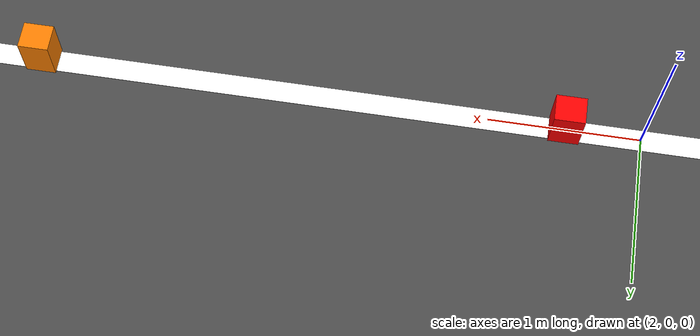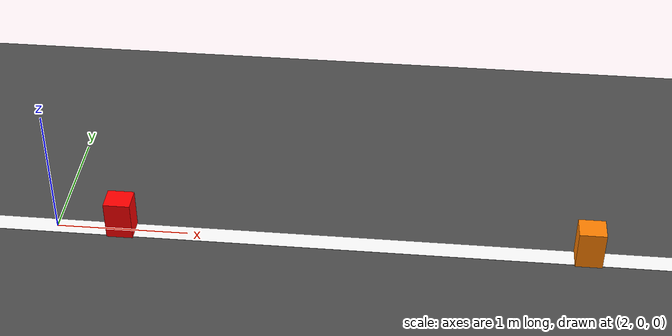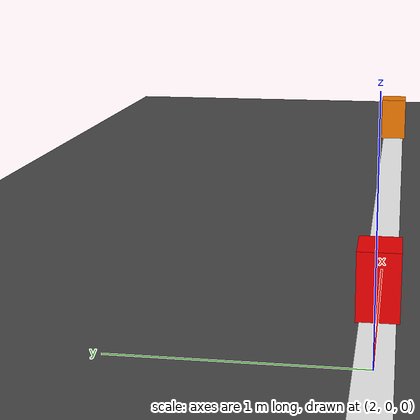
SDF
<?xml version="1.0" ?>
<sdf version="1.9">
  <world name="line_track_world">
    <plugin filename="gz-sim-physics-system" name="gz::sim::systems::Physics"/>
    <plugin filename="gz-sim-sensors-system" name="gz::sim::systems::Sensors">
      <render_engine>ogre2</render_engine>
    </plugin>
    <plugin filename="gz-sim-scene-broadcaster-system" name="gz::sim::systems::SceneBroadcaster"/>
    <plugin filename="gz-sim-user-commands-system" name="gz::sim::systems::UserCommands"/>

    <light type="directional" name="sun">
      <cast_shadows>true</cast_shadows>
      <pose>0 0 10 0 0 0</pose>
      <diffuse>0.8 0.8 0.8 1</diffuse>
      <specular>0.2 0.2 0.2 1</specular>
      <direction>-0.5 0.1 -0.9</direction>
    </light>

    <model name="ground_plane">
      <static>true</static>
      <link name="link">
        <visual name="visual">
          <geometry><plane><normal>0 0 1</normal><size>40 40</size></plane></geometry>
          <material><ambient>0.3 0.3 0.3 1</ambient><diffuse>0.3 0.3 0.3 1</diffuse></material>
        </visual>
        <collision name="col">
          <geometry><plane><normal>0 0 1</normal><size>40 40</size></plane></geometry>
        </collision>
      </link>
    </model>

    <model name="white_line">
      <static>true</static>
      <pose>3.0 0 0.001 0 0 0</pose>
      <link name="link">
        <visual name="visual">
          <geometry><box><size>16.0 0.15 0.001</size></box></geometry>
          <material><ambient>1 1 1 1</ambient><diffuse>1 1 1 1</diffuse></material>
        </visual>
        <collision name="col">
          <geometry><box><size>16.0 0.15 0.001</size></box></geometry>
        </collision>
      </link>
    </model>

    <!-- Obstacle 1: narrow width so robot can see line on both sides -->
    <model name="obstacle_1">
      <static>true</static>
      <pose>2.5 0 0.15 0 0 0</pose>
      <link name="link">
        <visual name="visual">
          <geometry><box><size>0.2 0.18 0.3</size></box></geometry>
          <material><ambient>1 0 0 1</ambient><diffuse>1 0 0 1</diffuse></material>
        </visual>
        <collision name="col">
          <geometry><box><size>0.2 0.18 0.3</size></box></geometry>
        </collision>
      </link>
    </model>

    <!-- Obstacle 2: narrow width -->
    <model name="obstacle_2">
      <static>true</static>
      <pose>6.0 0 0.15 0 0 0</pose>
      <link name="link">
        <visual name="visual">
          <geometry><box><size>0.2 0.18 0.3</size></box></geometry>
          <material><ambient>1 0.5 0 1</ambient><diffuse>1 0.5 0 1</diffuse></material>
        </visual>
        <collision name="col">
          <geometry><box><size>0.2 0.18 0.3</size></box></geometry>
        </collision>
      </link>
    </model>
  </world>
</sdf>
